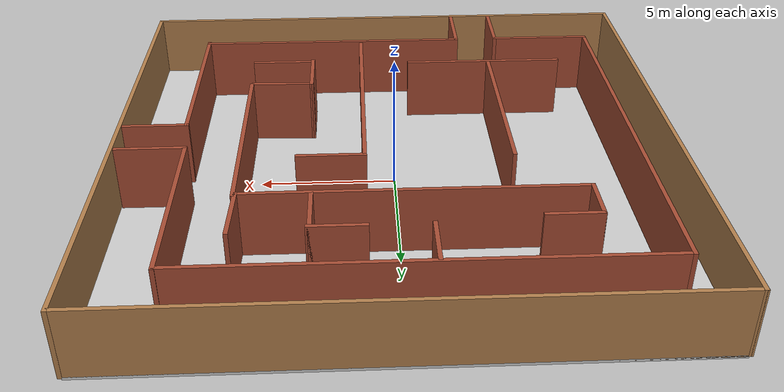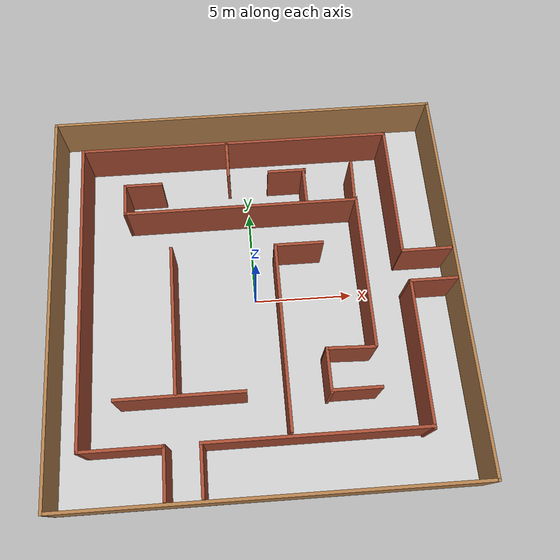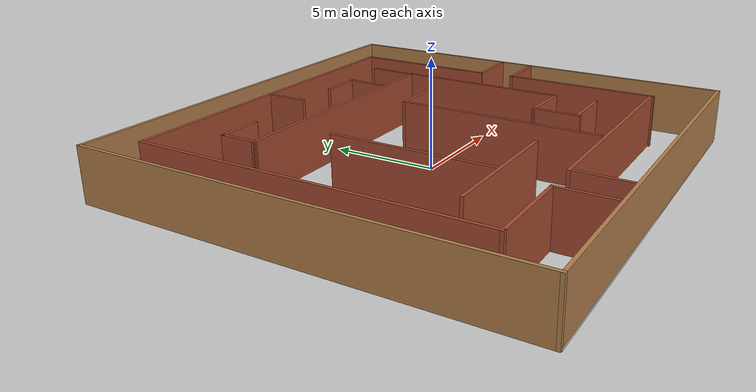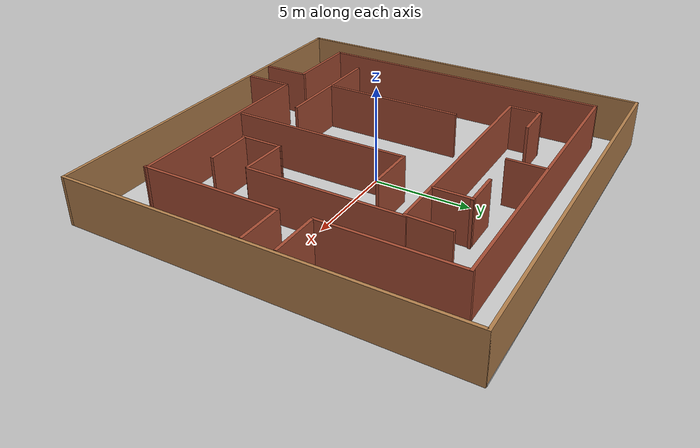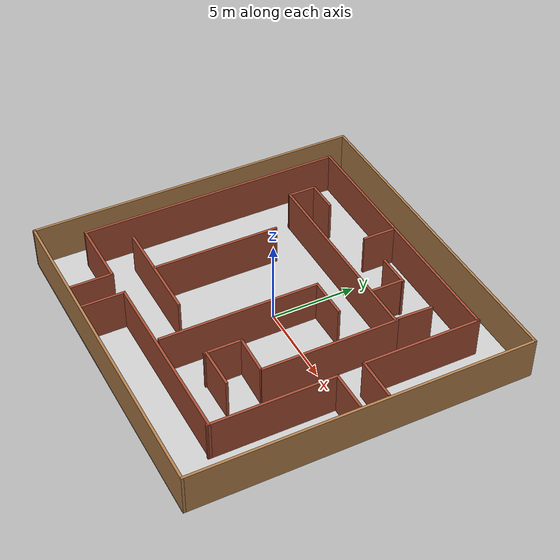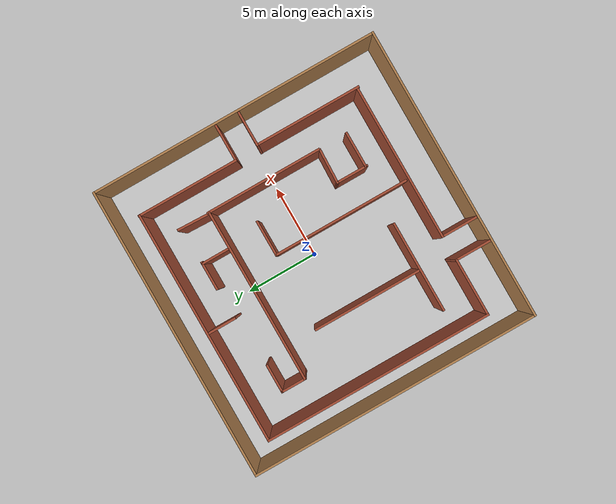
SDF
<sdf version="1.7">
 <world name="default">
  <model name="tb3_maze_world">
   <link name="Wall_0">
    <pose>0 -9.925 0 0 -0 3.14159</pose>
    <visual name="Wall_0_Visual">
     <pose>0 0 1.25 0 -0 0</pose>
     <geometry><box><size>20.25 0.15 2.5</size></box></geometry>
     <material>
      <script><uri>file://media/materials/scripts/gazebo.material</uri><name>Gazebo/Wood</name></script>
      <ambient>1 1 1 1</ambient>
      <shader type="pixel"/>
     </material>
     <meta><layer>0</layer></meta>
    </visual>
    <collision name="Wall_0_Collision">
     <pose>0 0 1.25 0 -0 0</pose>
     <geometry><box><size>20.25 0.15 2.5</size></box></geometry>
     <surface>
      <friction>
       <ode><mu>1</mu><mu2>1</mu2><fdir1>0 0 0</fdir1><slip1>0</slip1><slip2>0</slip2></ode>
       <torsional>
        <coefficient>1</coefficient>
        <patch_radius>0</patch_radius>
        <surface_radius>0</surface_radius>
        <use_patch_radius>1</use_patch_radius>
        <ode><slip>0</slip></ode>
       </torsional>
      </friction>
      <bounce><restitution_coefficient>0</restitution_coefficient><threshold>1e+06</threshold></bounce>
      <contact>
       <collide_without_contact>0</collide_without_contact>
       <collide_without_contact_bitmask>1</collide_without_contact_bitmask>
       <collide_bitmask>1</collide_bitmask>
       <ode>
        <soft_cfm>0</soft_cfm>
        <soft_erp>0.2</soft_erp>
        <kp>1e+13</kp>
        <kd>1</kd>
        <max_vel>0.01</max_vel>
        <min_depth>0</min_depth>
       </ode>
       <bullet>
        <split_impulse>1</split_impulse>
        <split_impulse_penetration_threshold>-0.01</split_impulse_penetration_threshold>
        <soft_cfm>0</soft_cfm>
        <soft_erp>0.2</soft_erp>
        <kp>1e+13</kp>
        <kd>1</kd>
       </bullet>
      </contact>
     </surface>
    </collision>
   </link>
   <link name="Wall_10">
    <pose>-8.57134 0.376075 0 0 -0 1.5708</pose>
    <visual name="Wall_10_Visual">
     <pose>0 0 1.25 0 -0 0</pose>
     <geometry><box><size>15.75 0.15 2.5</size></box></geometry>
     <material>
      <script><uri>file://media/materials/scripts/gazebo.material</uri><name>Gazebo/Bricks</name></script>
      <ambient>1 1 1 1</ambient>
      <shader type="pixel"/>
     </material>
     <meta><layer>0</layer></meta>
    </visual>
    <collision name="Wall_10_Collision">
     <pose>0 0 1.25 0 -0 0</pose>
     <geometry><box><size>15.75 0.15 2.5</size></box></geometry>
     <surface>
      <friction>
       <ode><mu>1</mu><mu2>1</mu2><fdir1>0 0 0</fdir1><slip1>0</slip1><slip2>0</slip2></ode>
       <torsional>
        <coefficient>1</coefficient>
        <patch_radius>0</patch_radius>
        <surface_radius>0</surface_radius>
        <use_patch_radius>1</use_patch_radius>
        <ode><slip>0</slip></ode>
       </torsional>
      </friction>
      <bounce><restitution_coefficient>0</restitution_coefficient><threshold>1e+06</threshold></bounce>
      <contact>
       <collide_without_contact>0</collide_without_contact>
       <collide_without_contact_bitmask>1</collide_without_contact_bitmask>
       <collide_bitmask>1</collide_bitmask>
       <ode>
        <soft_cfm>0</soft_cfm>
        <soft_erp>0.2</soft_erp>
        <kp>1e+13</kp>
        <kd>1</kd>
        <max_vel>0.01</max_vel>
        <min_depth>0</min_depth>
       </ode>
       <bullet>
        <split_impulse>1</split_impulse>
        <split_impulse_penetration_threshold>-0.01</split_impulse_penetration_threshold>
        <soft_cfm>0</soft_cfm>
        <soft_erp>0.2</soft_erp>
        <kp>1e+13</kp>
        <kd>1</kd>
       </bullet>
      </contact>
     </surface>
    </collision>
   </link>
   <link name="Wall_11">
    <pose>-0.579357 8.17574 0 0 0 -4.1e-05</pose>
    <visual name="Wall_11_Visual">
     <pose>0 0 1.25 0 -0 0</pose>
     <geometry><box><size>16.134 0.15 2.5</size></box></geometry>
     <material>
      <script><uri>file://media/materials/scripts/gazebo.material</uri><name>Gazebo/Bricks</name></script>
      <ambient>1 1 1 1</ambient>
      <shader type="pixel"/>
     </material>
     <meta><layer>0</layer></meta>
    </visual>
    <collision name="Wall_11_Collision">
     <pose>0 0 1.25 0 -0 0</pose>
     <geometry><box><size>16.134 0.15 2.5</size></box></geometry>
     <surface>
      <friction>
       <ode><mu>1</mu><mu2>1</mu2><fdir1>0 0 0</fdir1><slip1>0</slip1><slip2>0</slip2></ode>
       <torsional>
        <coefficient>1</coefficient>
        <patch_radius>0</patch_radius>
        <surface_radius>0</surface_radius>
        <use_patch_radius>1</use_patch_radius>
        <ode><slip>0</slip></ode>
       </torsional>
      </friction>
      <bounce><restitution_coefficient>0</restitution_coefficient><threshold>1e+06</threshold></bounce>
      <contact>
       <collide_without_contact>0</collide_without_contact>
       <collide_without_contact_bitmask>1</collide_without_contact_bitmask>
       <collide_bitmask>1</collide_bitmask>
       <ode>
        <soft_cfm>0</soft_cfm>
        <soft_erp>0.2</soft_erp>
        <kp>1e+13</kp>
        <kd>1</kd>
        <max_vel>0.01</max_vel>
        <min_depth>0</min_depth>
       </ode>
       <bullet>
        <split_impulse>1</split_impulse>
        <split_impulse_penetration_threshold>-0.01</split_impulse_penetration_threshold>
        <soft_cfm>0</soft_cfm>
        <soft_erp>0.2</soft_erp>
        <kp>1e+13</kp>
        <kd>1</kd>
       </bullet>
      </contact>
     </surface>
    </collision>
   </link>
   <link name="Wall_12">
    <pose>7.4329 4.77069 0 0 0 -1.5708</pose>
    <visual name="Wall_12_Visual">
     <pose>0 0 1.25 0 -0 0</pose>
     <geometry><box><size>7 0.15 2.5</size></box></geometry>
     <material>
      <script><uri>file://media/materials/scripts/gazebo.material</uri><name>Gazebo/Bricks</name></script>
      <ambient>1 1 1 1</ambient>
      <shader type="pixel"/>
     </material>
     <meta><layer>0</layer></meta>
    </visual>
    <collision name="Wall_12_Collision">
     <pose>0 0 1.25 0 -0 0</pose>
     <geometry><box><size>7 0.15 2.5</size></box></geometry>
     <surface>
      <friction>
       <ode><mu>1</mu><mu2>1</mu2><fdir1>0 0 0</fdir1><slip1>0</slip1><slip2>0</slip2></ode>
       <torsional>
        <coefficient>1</coefficient>
        <patch_radius>0</patch_radius>
        <surface_radius>0</surface_radius>
        <use_patch_radius>1</use_patch_radius>
        <ode><slip>0</slip></ode>
       </torsional>
      </friction>
      <bounce><restitution_coefficient>0</restitution_coefficient><threshold>1e+06</threshold></bounce>
      <contact>
       <collide_without_contact>0</collide_without_contact>
       <collide_without_contact_bitmask>1</collide_without_contact_bitmask>
       <collide_bitmask>1</collide_bitmask>
       <ode>
        <soft_cfm>0</soft_cfm>
        <soft_erp>0.2</soft_erp>
        <kp>1e+13</kp>
        <kd>1</kd>
        <max_vel>0.01</max_vel>
        <min_depth>0</min_depth>
       </ode>
       <bullet>
        <split_impulse>1</split_impulse>
        <split_impulse_penetration_threshold>-0.01</split_impulse_penetration_threshold>
        <soft_cfm>0</soft_cfm>
        <soft_erp>0.2</soft_erp>
        <kp>1e+13</kp>
        <kd>1</kd>
       </bullet>
      </contact>
     </surface>
    </collision>
   </link>
   <link name="Wall_13">
    <pose>8.66564 1.32574 0 0 -0 0.000335</pose>
    <inertial>
     <mass>1</mass>
     <inertia><ixx>1</ixx><ixy>0</ixy><ixz>0</ixz><iyy>1</iyy><iyz>0</iyz><izz>1</izz></inertia>
    </inertial>
    <visual name="Wall_13_Visual">
     <pose>0 0 1.25 0 -0 0</pose>
     <geometry><box><size>2.55604 0.15 2.5</size></box></geometry>
     <material>
      <script><uri>file://media/materials/scripts/gazebo.material</uri><name>Gazebo/Bricks</name></script>
      <ambient>1 1 1 1</ambient>
      <shader type="pixel"><normal_map>__default__</normal_map></shader>
      <diffuse>1 1 1 1</diffuse>
      <specular>0.2 0.2 0.2 1</specular>
      <emissive>0 0 0 1</emissive>
     </material>
     <meta><layer>0</layer></meta>
    </visual>
    <collision name="Wall_13_Collision">
     <pose>0 0 1.25 0 -0 0</pose>
     <geometry><box><size>2.55604 0.15 2.5</size></box></geometry>
     <surface>
      <friction>
       <ode><mu>1</mu><mu2>1</mu2><fdir1>0 0 0</fdir1><slip1>0</slip1><slip2>0</slip2></ode>
       <torsional>
        <coefficient>1</coefficient>
        <patch_radius>0</patch_radius>
        <surface_radius>0</surface_radius>
        <use_patch_radius>1</use_patch_radius>
        <ode><slip>0</slip></ode>
       </torsional>
      </friction>
      <bounce><restitution_coefficient>0</restitution_coefficient><threshold>1e+06</threshold></bounce>
      <contact>
       <collide_without_contact>0</collide_without_contact>
       <collide_without_contact_bitmask>1</collide_without_contact_bitmask>
       <collide_bitmask>1</collide_bitmask>
       <ode>
        <soft_cfm>0</soft_cfm>
        <soft_erp>0.2</soft_erp>
        <kp>1e+13</kp>
        <kd>1</kd>
        <max_vel>0.01</max_vel>
        <min_depth>0</min_depth>
       </ode>
       <bullet>
        <split_impulse>1</split_impulse>
        <split_impulse_penetration_threshold>-0.01</split_impulse_penetration_threshold>
        <soft_cfm>0</soft_cfm>
        <soft_erp>0.2</soft_erp>
        <kp>1e+13</kp>
        <kd>1</kd>
       </bullet>
      </contact>
     </surface>
    </collision>
   </link>
   <link name="Wall_15">
    <pose>8.73819 -0.299308 0 0 -0 3.14159</pose>
    <inertial>
     <mass>1</mass>
     <inertia><ixx>1</ixx><ixy>0</ixy><ixz>0</ixz><iyy>1</iyy><iyz>0</iyz><izz>1</izz></inertia>
    </inertial>
    <visual name="Wall_15_Visual">
     <pose>0 0 1.25 0 -0 0</pose>
     <geometry><box><size>2.43 0.15 2.5</size></box></geometry>
     <material>
      <script><uri>file://media/materials/scripts/gazebo.material</uri><name>Gazebo/Bricks</name></script>
      <ambient>1 1 1 1</ambient>
      <shader type="pixel"><normal_map>__default__</normal_map></shader>
      <diffuse>1 1 1 1</diffuse>
      <specular>0.2 0.2 0.2 1</specular>
      <emissive>0 0 0 1</emissive>
     </material>
     <meta><layer>0</layer></meta>
    </visual>
    <collision name="Wall_15_Collision">
     <pose>0 0 1.25 0 -0 0</pose>
     <geometry><box><size>2.43 0.15 2.5</size></box></geometry>
     <surface>
      <friction>
       <ode><mu>1</mu><mu2>1</mu2><fdir1>0 0 0</fdir1><slip1>0</slip1><slip2>0</slip2></ode>
       <torsional>
        <coefficient>1</coefficient>
        <patch_radius>0</patch_radius>
        <surface_radius>0</surface_radius>
        <use_patch_radius>1</use_patch_radius>
        <ode><slip>0</slip></ode>
       </torsional>
      </friction>
      <bounce><restitution_coefficient>0</restitution_coefficient><threshold>1e+06</threshold></bounce>
      <contact>
       <collide_without_contact>0</collide_without_contact>
       <collide_without_contact_bitmask>1</collide_without_contact_bitmask>
       <collide_bitmask>1</collide_bitmask>
       <ode>
        <soft_cfm>0</soft_cfm>
        <soft_erp>0.2</soft_erp>
        <kp>1e+13</kp>
        <kd>1</kd>
        <max_vel>0.01</max_vel>
        <min_depth>0</min_depth>
       </ode>
       <bullet>
        <split_impulse>1</split_impulse>
        <split_impulse_penetration_threshold>-0.01</split_impulse_penetration_threshold>
        <soft_cfm>0</soft_cfm>
        <soft_erp>0.2</soft_erp>
        <kp>1e+13</kp>
        <kd>1</kd>
       </bullet>
      </contact>
     </surface>
    </collision>
   </link>
   <link name="Wall_16">
    <pose>7.60819 -3.88746 0 0 0 -1.5708</pose>
    <visual name="Wall_16_Visual">
     <pose>0 0 1.25 0 -0 0</pose>
     <geometry><box><size>7.3263 0.15 2.5</size></box></geometry>
     <material>
      <script><uri>file://media/materials/scripts/gazebo.material</uri><name>Gazebo/Bricks</name></script>
      <ambient>1 1 1 1</ambient>
      <shader type="pixel"/>
     </material>
     <meta><layer>0</layer></meta>
    </visual>
    <collision name="Wall_16_Collision">
     <pose>0 0 1.25 0 -0 0</pose>
     <geometry><box><size>7.3263 0.15 2.5</size></box></geometry>
     <surface>
      <friction>
       <ode><mu>1</mu><mu2>1</mu2><fdir1>0 0 0</fdir1><slip1>0</slip1><slip2>0</slip2></ode>
       <torsional>
        <coefficient>1</coefficient>
        <patch_radius>0</patch_radius>
        <surface_radius>0</surface_radius>
        <use_patch_radius>1</use_patch_radius>
        <ode><slip>0</slip></ode>
       </torsional>
      </friction>
      <bounce><restitution_coefficient>0</restitution_coefficient><threshold>1e+06</threshold></bounce>
      <contact>
       <collide_without_contact>0</collide_without_contact>
       <collide_without_contact_bitmask>1</collide_without_contact_bitmask>
       <collide_bitmask>1</collide_bitmask>
       <ode>
        <soft_cfm>0</soft_cfm>
        <soft_erp>0.2</soft_erp>
        <kp>1e+13</kp>
        <kd>1</kd>
        <max_vel>0.01</max_vel>
        <min_depth>0</min_depth>
       </ode>
       <bullet>
        <split_impulse>1</split_impulse>
        <split_impulse_penetration_threshold>-0.01</split_impulse_penetration_threshold>
        <soft_cfm>0</soft_cfm>
        <soft_erp>0.2</soft_erp>
        <kp>1e+13</kp>
        <kd>1</kd>
       </bullet>
      </contact>
     </surface>
    </collision>
   </link>
   <link name="Wall_17">
    <pose>2.30819 -7.39403 0 0 -0 3.14159</pose>
    <visual name="Wall_17_Visual">
     <pose>0 0 1.25 0 -0 0</pose>
     <geometry><box><size>10.75 0.15 2.5</size></box></geometry>
     <material>
      <script><uri>file://media/materials/scripts/gazebo.material</uri><name>Gazebo/Bricks</name></script>
      <ambient>1 1 1 1</ambient>
      <shader type="pixel"/>
     </material>
     <meta><layer>0</layer></meta>
    </visual>
    <collision name="Wall_17_Collision">
     <pose>0 0 1.25 0 -0 0</pose>
     <geometry><box><size>10.75 0.15 2.5</size></box></geometry>
     <surface>
      <friction>
       <ode><mu>1</mu><mu2>1</mu2><fdir1>0 0 0</fdir1><slip1>0</slip1><slip2>0</slip2></ode>
       <torsional>
        <coefficient>1</coefficient>
        <patch_radius>0</patch_radius>
        <surface_radius>0</surface_radius>
        <use_patch_radius>1</use_patch_radius>
        <ode><slip>0</slip></ode>
       </torsional>
      </friction>
      <bounce><restitution_coefficient>0</restitution_coefficient><threshold>1e+06</threshold></bounce>
      <contact>
       <collide_without_contact>0</collide_without_contact>
       <collide_without_contact_bitmask>1</collide_without_contact_bitmask>
       <collide_bitmask>1</collide_bitmask>
       <ode>
        <soft_cfm>0</soft_cfm>
        <soft_erp>0.2</soft_erp>
        <kp>1e+13</kp>
        <kd>1</kd>
        <max_vel>0.01</max_vel>
        <min_depth>0</min_depth>
       </ode>
       <bullet>
        <split_impulse>1</split_impulse>
        <split_impulse_penetration_threshold>-0.01</split_impulse_penetration_threshold>
        <soft_cfm>0</soft_cfm>
        <soft_erp>0.2</soft_erp>
        <kp>1e+13</kp>
        <kd>1</kd>
       </bullet>
      </contact>
     </surface>
    </collision>
   </link>
   <link name="Wall_18">
    <pose>-2.99181 -8.59 0 0 0 -1.5708</pose>
    <inertial>
     <mass>1</mass>
     <inertia><ixx>1</ixx><ixy>0</ixy><ixz>0</ixz><iyy>1</iyy><iyz>0</iyz><izz>1</izz></inertia>
    </inertial>
    <visual name="Wall_18_Visual">
     <pose>0 0 1.25 0 -0 0</pose>
     <geometry><box><size>2.5 0.15 2.5</size></box></geometry>
     <material>
      <script><uri>file://media/materials/scripts/gazebo.material</uri><name>Gazebo/Bricks</name></script>
      <ambient>1 1 1 1</ambient>
      <shader type="pixel"><normal_map>__default__</normal_map></shader>
      <diffuse>1 1 1 1</diffuse>
      <specular>0.2 0.2 0.2 1</specular>
      <emissive>0 0 0 1</emissive>
     </material>
     <meta><layer>0</layer></meta>
    </visual>
    <collision name="Wall_18_Collision">
     <pose>0 0 1.25 0 -0 0</pose>
     <geometry><box><size>2.5 0.15 2.5</size></box></geometry>
     <surface>
      <friction>
       <ode><mu>1</mu><mu2>1</mu2><fdir1>0 0 0</fdir1><slip1>0</slip1><slip2>0</slip2></ode>
       <torsional>
        <coefficient>1</coefficient>
        <patch_radius>0</patch_radius>
        <surface_radius>0</surface_radius>
        <use_patch_radius>1</use_patch_radius>
        <ode><slip>0</slip></ode>
       </torsional>
      </friction>
      <bounce><restitution_coefficient>0</restitution_coefficient><threshold>1e+06</threshold></bounce>
      <contact>
       <collide_without_contact>0</collide_without_contact>
       <collide_without_contact_bitmask>1</collide_without_contact_bitmask>
       <collide_bitmask>1</collide_bitmask>
       <ode>
        <soft_cfm>0</soft_cfm>
        <soft_erp>0.2</soft_erp>
        <kp>1e+13</kp>
        <kd>1</kd>
        <max_vel>0.01</max_vel>
        <min_depth>0</min_depth>
       </ode>
       <bullet>
        <split_impulse>1</split_impulse>
        <split_impulse_penetration_threshold>-0.01</split_impulse_penetration_threshold>
        <soft_cfm>0</soft_cfm>
        <soft_erp>0.2</soft_erp>
        <kp>1e+13</kp>
        <kd>1</kd>
       </bullet>
      </contact>
     </surface>
    </collision>
   </link>
   <link name="Wall_2">
    <pose>-10.05 0 0 0 -0 1.5708</pose>
    <visual name="Wall_2_Visual">
     <pose>0 0 1.25 0 -0 0</pose>
     <geometry><box><size>20 0.15 2.5</size></box></geometry>
     <material>
      <script><uri>file://media/materials/scripts/gazebo.material</uri><name>Gazebo/Wood</name></script>
      <ambient>1 1 1 1</ambient>
      <shader type="pixel"/>
     </material>
     <meta><layer>0</layer></meta>
    </visual>
    <collision name="Wall_2_Collision">
     <pose>0 0 1.25 0 -0 0</pose>
     <geometry><box><size>20 0.15 2.5</size></box></geometry>
     <surface>
      <friction>
       <ode><mu>1</mu><mu2>1</mu2><fdir1>0 0 0</fdir1><slip1>0</slip1><slip2>0</slip2></ode>
       <torsional>
        <coefficient>1</coefficient>
        <patch_radius>0</patch_radius>
        <surface_radius>0</surface_radius>
        <use_patch_radius>1</use_patch_radius>
        <ode><slip>0</slip></ode>
       </torsional>
      </friction>
      <bounce><restitution_coefficient>0</restitution_coefficient><threshold>1e+06</threshold></bounce>
      <contact>
       <collide_without_contact>0</collide_without_contact>
       <collide_without_contact_bitmask>1</collide_without_contact_bitmask>
       <collide_bitmask>1</collide_bitmask>
       <ode>
        <soft_cfm>0</soft_cfm>
        <soft_erp>0.2</soft_erp>
        <kp>1e+13</kp>
        <kd>1</kd>
        <max_vel>0.01</max_vel>
        <min_depth>0</min_depth>
       </ode>
       <bullet>
        <split_impulse>1</split_impulse>
        <split_impulse_penetration_threshold>-0.01</split_impulse_penetration_threshold>
        <soft_cfm>0</soft_cfm>
        <soft_erp>0.2</soft_erp>
        <kp>1e+13</kp>
        <kd>1</kd>
       </bullet>
      </contact>
     </surface>
    </collision>
   </link>
   <link name="Wall_20">
    <pose>-3.89345 -5.19374 0 0 -0 0</pose>
    <visual name="Wall_20_Visual">
     <pose>0 0 1.25 0 -0 0</pose>
     <geometry><box><size>6.25 0.15 2.5</size></box></geometry>
     <material>
      <script><uri>file://media/materials/scripts/gazebo.material</uri><name>Gazebo/Bricks</name></script>
      <ambient>1 1 1 1</ambient>
      <shader type="pixel"/>
     </material>
     <meta><layer>0</layer></meta>
    </visual>
    <collision name="Wall_20_Collision">
     <pose>0 0 1.25 0 -0 0</pose>
     <geometry><box><size>6.25 0.15 2.5</size></box></geometry>
     <surface>
      <friction>
       <ode><mu>1</mu><mu2>1</mu2><fdir1>0 0 0</fdir1><slip1>0</slip1><slip2>0</slip2></ode>
       <torsional>
        <coefficient>1</coefficient>
        <patch_radius>0</patch_radius>
        <surface_radius>0</surface_radius>
        <use_patch_radius>1</use_patch_radius>
        <ode><slip>0</slip></ode>
       </torsional>
      </friction>
      <bounce><restitution_coefficient>0</restitution_coefficient><threshold>1e+06</threshold></bounce>
      <contact>
       <collide_without_contact>0</collide_without_contact>
       <collide_without_contact_bitmask>1</collide_without_contact_bitmask>
       <collide_bitmask>1</collide_bitmask>
       <ode>
        <soft_cfm>0</soft_cfm>
        <soft_erp>0.2</soft_erp>
        <kp>1e+13</kp>
        <kd>1</kd>
        <max_vel>0.01</max_vel>
        <min_depth>0</min_depth>
       </ode>
       <bullet>
        <split_impulse>1</split_impulse>
        <split_impulse_penetration_threshold>-0.01</split_impulse_penetration_threshold>
        <soft_cfm>0</soft_cfm>
        <soft_erp>0.2</soft_erp>
        <kp>1e+13</kp>
        <kd>1</kd>
       </bullet>
      </contact>
     </surface>
    </collision>
   </link>
   <link name="Wall_23">
    <pose>-4.08836 -1.43717 0 0 -0 1.5708</pose>
    <visual name="Wall_23_Visual">
     <pose>0 0 1.25 0 -0 0</pose>
     <geometry><box><size>7.5 0.15 2.5</size></box></geometry>
     <material>
      <script><uri>file://media/materials/scripts/gazebo.material</uri><name>Gazebo/Bricks</name></script>
      <ambient>1 1 1 1</ambient>
      <shader type="pixel"/>
     </material>
     <meta><layer>0</layer></meta>
    </visual>
    <collision name="Wall_23_Collision">
     <pose>0 0 1.25 0 -0 0</pose>
     <geometry><box><size>7.5 0.15 2.5</size></box></geometry>
     <surface>
      <friction>
       <ode><mu>1</mu><mu2>1</mu2><fdir1>0 0 0</fdir1><slip1>0</slip1><slip2>0</slip2></ode>
       <torsional>
        <coefficient>1</coefficient>
        <patch_radius>0</patch_radius>
        <surface_radius>0</surface_radius>
        <use_patch_radius>1</use_patch_radius>
        <ode><slip>0</slip></ode>
       </torsional>
      </friction>
      <bounce><restitution_coefficient>0</restitution_coefficient><threshold>1e+06</threshold></bounce>
      <contact>
       <collide_without_contact>0</collide_without_contact>
       <collide_without_contact_bitmask>1</collide_without_contact_bitmask>
       <collide_bitmask>1</collide_bitmask>
       <ode>
        <soft_cfm>0</soft_cfm>
        <soft_erp>0.2</soft_erp>
        <kp>1e+13</kp>
        <kd>1</kd>
        <max_vel>0.01</max_vel>
        <min_depth>0</min_depth>
       </ode>
       <bullet>
        <split_impulse>1</split_impulse>
        <split_impulse_penetration_threshold>-0.01</split_impulse_penetration_threshold>
        <soft_cfm>0</soft_cfm>
        <soft_erp>0.2</soft_erp>
        <kp>1e+13</kp>
        <kd>1</kd>
       </bullet>
      </contact>
     </surface>
    </collision>
   </link>
   <link name="Wall_25">
    <pose>1.13237 -2.58107 0 0 0 -1.5708</pose>
    <visual name="Wall_25_Visual">
     <pose>0 0 1.25 0 -0 0</pose>
     <geometry><box><size>9.28167 0.15 2.5</size></box></geometry>
     <material>
      <script><uri>file://media/materials/scripts/gazebo.material</uri><name>Gazebo/Bricks</name></script>
      <ambient>1 1 1 1</ambient>
      <shader type="pixel"/>
     </material>
     <meta><layer>0</layer></meta>
    </visual>
    <collision name="Wall_25_Collision">
     <pose>0 0 1.25 0 -0 0</pose>
     <geometry><box><size>9.28167 0.15 2.5</size></box></geometry>
     <surface>
      <friction>
       <ode><mu>1</mu><mu2>1</mu2><fdir1>0 0 0</fdir1><slip1>0</slip1><slip2>0</slip2></ode>
       <torsional>
        <coefficient>1</coefficient>
        <patch_radius>0</patch_radius>
        <surface_radius>0</surface_radius>
        <use_patch_radius>1</use_patch_radius>
        <ode><slip>0</slip></ode>
       </torsional>
      </friction>
      <bounce><restitution_coefficient>0</restitution_coefficient><threshold>1e+06</threshold></bounce>
      <contact>
       <collide_without_contact>0</collide_without_contact>
       <collide_without_contact_bitmask>1</collide_without_contact_bitmask>
       <collide_bitmask>1</collide_bitmask>
       <ode>
        <soft_cfm>0</soft_cfm>
        <soft_erp>0.2</soft_erp>
        <kp>1e+13</kp>
        <kd>1</kd>
        <max_vel>0.01</max_vel>
        <min_depth>0</min_depth>
       </ode>
       <bullet>
        <split_impulse>1</split_impulse>
        <split_impulse_penetration_threshold>-0.01</split_impulse_penetration_threshold>
        <soft_cfm>0</soft_cfm>
        <soft_erp>0.2</soft_erp>
        <kp>1e+13</kp>
        <kd>1</kd>
       </bullet>
      </contact>
     </surface>
    </collision>
   </link>
   <link name="Wall_27">
    <pose>2.30737 2.06634 0 0 -0 0</pose>
    <visual name="Wall_27_Visual">
     <pose>0 0 1.25 0 -0 0</pose>
     <geometry><box><size>2.5 0.15 2.5</size></box></geometry>
     <material>
      <script><uri>file://media/materials/scripts/gazebo.material</uri><name>Gazebo/Bricks</name></script>
      <ambient>1 1 1 1</ambient>
      <shader type="pixel"/>
     </material>
     <meta><layer>0</layer></meta>
    </visual>
    <collision name="Wall_27_Collision">
     <pose>0 0 1.25 0 -0 0</pose>
     <geometry><box><size>2.5 0.15 2.5</size></box></geometry>
     <surface>
      <friction>
       <ode><mu>1</mu><mu2>1</mu2><fdir1>0 0 0</fdir1><slip1>0</slip1><slip2>0</slip2></ode>
       <torsional>
        <coefficient>1</coefficient>
        <patch_radius>0</patch_radius>
        <surface_radius>0</surface_radius>
        <use_patch_radius>1</use_patch_radius>
        <ode><slip>0</slip></ode>
       </torsional>
      </friction>
      <bounce><restitution_coefficient>0</restitution_coefficient><threshold>1e+06</threshold></bounce>
      <contact>
       <collide_without_contact>0</collide_without_contact>
       <collide_without_contact_bitmask>1</collide_without_contact_bitmask>
       <collide_bitmask>1</collide_bitmask>
       <ode>
        <soft_cfm>0</soft_cfm>
        <soft_erp>0.2</soft_erp>
        <kp>1e+13</kp>
        <kd>1</kd>
        <max_vel>0.01</max_vel>
        <min_depth>0</min_depth>
       </ode>
       <bullet>
        <split_impulse>1</split_impulse>
        <split_impulse_penetration_threshold>-0.01</split_impulse_penetration_threshold>
        <soft_cfm>0</soft_cfm>
        <soft_erp>0.2</soft_erp>
        <kp>1e+13</kp>
        <kd>1</kd>
       </bullet>
      </contact>
     </surface>
    </collision>
   </link>
   <link name="Wall_29">
    <pose>-0.482899 4.35573 0 0 -0 0.000903</pose>
    <visual name="Wall_29_Visual">
     <pose>0 0 1.25 0 -0 0</pose>
     <geometry><box><size>11.9291 0.15 2.5</size></box></geometry>
     <material>
      <script><uri>file://media/materials/scripts/gazebo.material</uri><name>Gazebo/Bricks</name></script>
      <ambient>1 1 1 1</ambient>
      <shader type="pixel"/>
     </material>
     <meta><layer>0</layer></meta>
    </visual>
    <collision name="Wall_29_Collision">
     <pose>0 0 1.25 0 -0 0</pose>
     <geometry><box><size>11.9291 0.15 2.5</size></box></geometry>
     <surface>
      <friction>
       <ode><mu>1</mu><mu2>1</mu2><fdir1>0 0 0</fdir1><slip1>0</slip1><slip2>0</slip2></ode>
       <torsional>
        <coefficient>1</coefficient>
        <patch_radius>0</patch_radius>
        <surface_radius>0</surface_radius>
        <use_patch_radius>1</use_patch_radius>
        <ode><slip>0</slip></ode>
       </torsional>
      </friction>
      <bounce><restitution_coefficient>0</restitution_coefficient><threshold>1e+06</threshold></bounce>
      <contact>
       <collide_without_contact>0</collide_without_contact>
       <collide_without_contact_bitmask>1</collide_without_contact_bitmask>
       <collide_bitmask>1</collide_bitmask>
       <ode>
        <soft_cfm>0</soft_cfm>
        <soft_erp>0.2</soft_erp>
        <kp>1e+13</kp>
        <kd>1</kd>
        <max_vel>0.01</max_vel>
        <min_depth>0</min_depth>
       </ode>
       <bullet>
        <split_impulse>1</split_impulse>
        <split_impulse_penetration_threshold>-0.01</split_impulse_penetration_threshold>
        <soft_cfm>0</soft_cfm>
        <soft_erp>0.2</soft_erp>
        <kp>1e+13</kp>
        <kd>1</kd>
       </bullet>
      </contact>
     </surface>
    </collision>
   </link>
   <link name="Wall_30">
    <pose>5.47757 0.501702 0 0 0 -1.5708</pose>
    <visual name="Wall_30_Visual">
     <pose>0 0 1.25 0 -0 0</pose>
     <geometry><box><size>8.01056 0.15 2.5</size></box></geometry>
     <material>
      <script><uri>file://media/materials/scripts/gazebo.material</uri><name>Gazebo/Bricks</name></script>
      <ambient>1 1 1 1</ambient>
      <shader type="pixel"/>
     </material>
     <meta><layer>0</layer></meta>
    </visual>
    <collision name="Wall_30_Collision">
     <pose>0 0 1.25 0 -0 0</pose>
     <geometry><box><size>8.01056 0.15 2.5</size></box></geometry>
     <surface>
      <friction>
       <ode><mu>1</mu><mu2>1</mu2><fdir1>0 0 0</fdir1><slip1>0</slip1><slip2>0</slip2></ode>
       <torsional>
        <coefficient>1</coefficient>
        <patch_radius>0</patch_radius>
        <surface_radius>0</surface_radius>
        <use_patch_radius>1</use_patch_radius>
        <ode><slip>0</slip></ode>
       </torsional>
      </friction>
      <bounce><restitution_coefficient>0</restitution_coefficient><threshold>1e+06</threshold></bounce>
      <contact>
       <collide_without_contact>0</collide_without_contact>
       <collide_without_contact_bitmask>1</collide_without_contact_bitmask>
       <collide_bitmask>1</collide_bitmask>
       <ode>
        <soft_cfm>0</soft_cfm>
        <soft_erp>0.2</soft_erp>
        <kp>1e+13</kp>
        <kd>1</kd>
        <max_vel>0.01</max_vel>
        <min_depth>0</min_depth>
       </ode>
       <bullet>
        <split_impulse>1</split_impulse>
        <split_impulse_penetration_threshold>-0.01</split_impulse_penetration_threshold>
        <soft_cfm>0</soft_cfm>
        <soft_erp>0.2</soft_erp>
        <kp>1e+13</kp>
        <kd>1</kd>
       </bullet>
      </contact>
     </surface>
    </collision>
   </link>
   <link name="Wall_31">
    <pose>4.2671 -3.46404 0 0 -0 3.11048</pose>
    <visual name="Wall_31_Visual">
     <pose>0 0 1.25 0 -0 0</pose>
     <geometry><box><size>2.43017 0.15 2.5</size></box></geometry>
     <material>
      <script><uri>file://media/materials/scripts/gazebo.material</uri><name>Gazebo/Bricks</name></script>
      <ambient>1 1 1 1</ambient>
      <shader type="pixel"/>
     </material>
     <meta><layer>0</layer></meta>
    </visual>
    <collision name="Wall_31_Collision">
     <pose>0 0 1.25 0 -0 0</pose>
     <geometry><box><size>2.43017 0.15 2.5</size></box></geometry>
     <surface>
      <friction>
       <ode><mu>1</mu><mu2>1</mu2><fdir1>0 0 0</fdir1><slip1>0</slip1><slip2>0</slip2></ode>
       <torsional>
        <coefficient>1</coefficient>
        <patch_radius>0</patch_radius>
        <surface_radius>0</surface_radius>
        <use_patch_radius>1</use_patch_radius>
        <ode><slip>0</slip></ode>
       </torsional>
      </friction>
      <bounce><restitution_coefficient>0</restitution_coefficient><threshold>1e+06</threshold></bounce>
      <contact>
       <collide_without_contact>0</collide_without_contact>
       <collide_without_contact_bitmask>1</collide_without_contact_bitmask>
       <collide_bitmask>1</collide_bitmask>
       <ode>
        <soft_cfm>0</soft_cfm>
        <soft_erp>0.2</soft_erp>
        <kp>1e+13</kp>
        <kd>1</kd>
        <max_vel>0.01</max_vel>
        <min_depth>0</min_depth>
       </ode>
       <bullet>
        <split_impulse>1</split_impulse>
        <split_impulse_penetration_threshold>-0.01</split_impulse_penetration_threshold>
        <soft_cfm>0</soft_cfm>
        <soft_erp>0.2</soft_erp>
        <kp>1e+13</kp>
        <kd>1</kd>
       </bullet>
      </contact>
     </surface>
    </collision>
   </link>
   <link name="Wall_32">
    <pose>3.12757 -4.4733 0 0 0 -1.5708</pose>
    <visual name="Wall_32_Visual">
     <pose>0 0 1.25 0 -0 0</pose>
     <geometry><box><size>2.23944 0.15 2.5</size></box></geometry>
     <material>
      <script><uri>file://media/materials/scripts/gazebo.material</uri><name>Gazebo/Bricks</name></script>
      <ambient>1 1 1 1</ambient>
      <shader type="pixel"/>
     </material>
     <meta><layer>0</layer></meta>
    </visual>
    <collision name="Wall_32_Collision">
     <pose>0 0 1.25 0 -0 0</pose>
     <geometry><box><size>2.23944 0.15 2.5</size></box></geometry>
     <surface>
      <friction>
       <ode><mu>1</mu><mu2>1</mu2><fdir1>0 0 0</fdir1><slip1>0</slip1><slip2>0</slip2></ode>
       <torsional>
        <coefficient>1</coefficient>
        <patch_radius>0</patch_radius>
        <surface_radius>0</surface_radius>
        <use_patch_radius>1</use_patch_radius>
        <ode><slip>0</slip></ode>
       </torsional>
      </friction>
      <bounce><restitution_coefficient>0</restitution_coefficient><threshold>1e+06</threshold></bounce>
      <contact>
       <collide_without_contact>0</collide_without_contact>
       <collide_without_contact_bitmask>1</collide_without_contact_bitmask>
       <collide_bitmask>1</collide_bitmask>
       <ode>
        <soft_cfm>0</soft_cfm>
        <soft_erp>0.2</soft_erp>
        <kp>1e+13</kp>
        <kd>1</kd>
        <max_vel>0.01</max_vel>
        <min_depth>0</min_depth>
       </ode>
       <bullet>
        <split_impulse>1</split_impulse>
        <split_impulse_penetration_threshold>-0.01</split_impulse_penetration_threshold>
        <soft_cfm>0</soft_cfm>
        <soft_erp>0.2</soft_erp>
        <kp>1e+13</kp>
        <kd>1</kd>
       </bullet>
      </contact>
     </surface>
    </collision>
   </link>
   <link name="Wall_33">
    <pose>4.30257 -5.43645 0 0 -0 0</pose>
    <visual name="Wall_33_Visual">
     <pose>0 0 1.25 0 -0 0</pose>
     <geometry><box><size>2.5 0.15 2.5</size></box></geometry>
     <material>
      <script><uri>file://media/materials/scripts/gazebo.material</uri><name>Gazebo/Bricks</name></script>
      <ambient>1 1 1 1</ambient>
      <shader type="pixel"/>
     </material>
     <meta><layer>0</layer></meta>
    </visual>
    <collision name="Wall_33_Collision">
     <pose>0 0 1.25 0 -0 0</pose>
     <geometry><box><size>2.5 0.15 2.5</size></box></geometry>
     <surface>
      <friction>
       <ode><mu>1</mu><mu2>1</mu2><fdir1>0 0 0</fdir1><slip1>0</slip1><slip2>0</slip2></ode>
       <torsional>
        <coefficient>1</coefficient>
        <patch_radius>0</patch_radius>
        <surface_radius>0</surface_radius>
        <use_patch_radius>1</use_patch_radius>
        <ode><slip>0</slip></ode>
       </torsional>
      </friction>
      <bounce><restitution_coefficient>0</restitution_coefficient><threshold>1e+06</threshold></bounce>
      <contact>
       <collide_without_contact>0</collide_without_contact>
       <collide_without_contact_bitmask>1</collide_without_contact_bitmask>
       <collide_bitmask>1</collide_bitmask>
       <ode>
        <soft_cfm>0</soft_cfm>
        <soft_erp>0.2</soft_erp>
        <kp>1e+13</kp>
        <kd>1</kd>
        <max_vel>0.01</max_vel>
        <min_depth>0</min_depth>
       </ode>
       <bullet>
        <split_impulse>1</split_impulse>
        <split_impulse_penetration_threshold>-0.01</split_impulse_penetration_threshold>
        <soft_cfm>0</soft_cfm>
        <soft_erp>0.2</soft_erp>
        <kp>1e+13</kp>
        <kd>1</kd>
       </bullet>
      </contact>
     </surface>
    </collision>
   </link>
   <link name="Wall_36">
    <pose>-6.37243 5.15041 0 0 -0 1.5708</pose>
    <visual name="Wall_36_Visual">
     <pose>0 0 1.25 0 -0 0</pose>
     <geometry><box><size>1.75 0.15 2.5</size></box></geometry>
     <material>
      <script><uri>file://media/materials/scripts/gazebo.material</uri><name>Gazebo/Bricks</name></script>
      <ambient>1 1 1 1</ambient>
      <shader type="pixel"/>
     </material>
     <meta><layer>0</layer></meta>
    </visual>
    <collision name="Wall_36_Collision">
     <pose>0 0 1.25 0 -0 0</pose>
     <geometry><box><size>1.75 0.15 2.5</size></box></geometry>
     <surface>
      <friction>
       <ode><mu>1</mu><mu2>1</mu2><fdir1>0 0 0</fdir1><slip1>0</slip1><slip2>0</slip2></ode>
       <torsional>
        <coefficient>1</coefficient>
        <patch_radius>0</patch_radius>
        <surface_radius>0</surface_radius>
        <use_patch_radius>1</use_patch_radius>
        <ode><slip>0</slip></ode>
       </torsional>
      </friction>
      <bounce><restitution_coefficient>0</restitution_coefficient><threshold>1e+06</threshold></bounce>
      <contact>
       <collide_without_contact>0</collide_without_contact>
       <collide_without_contact_bitmask>1</collide_without_contact_bitmask>
       <collide_bitmask>1</collide_bitmask>
       <ode>
        <soft_cfm>0</soft_cfm>
        <soft_erp>0.2</soft_erp>
        <kp>1e+13</kp>
        <kd>1</kd>
        <max_vel>0.01</max_vel>
        <min_depth>0</min_depth>
       </ode>
       <bullet>
        <split_impulse>1</split_impulse>
        <split_impulse_penetration_threshold>-0.01</split_impulse_penetration_threshold>
        <soft_cfm>0</soft_cfm>
        <soft_erp>0.2</soft_erp>
        <kp>1e+13</kp>
        <kd>1</kd>
       </bullet>
      </contact>
     </surface>
    </collision>
   </link>
   <link name="Wall_37">
    <pose>-5.44743 5.95041 0 0 -0 0</pose>
    <visual name="Wall_37_Visual">
     <pose>0 0 1.25 0 -0 0</pose>
     <geometry><box><size>2 0.15 2.5</size></box></geometry>
     <material>
      <script><uri>file://media/materials/scripts/gazebo.material</uri><name>Gazebo/Bricks</name></script>
      <ambient>1 1 1 1</ambient>
      <shader type="pixel"/>
     </material>
     <meta><layer>0</layer></meta>
    </visual>
    <collision name="Wall_37_Collision">
     <pose>0 0 1.25 0 -0 0</pose>
     <geometry><box><size>2 0.15 2.5</size></box></geometry>
     <surface>
      <friction>
       <ode><mu>1</mu><mu2>1</mu2><fdir1>0 0 0</fdir1><slip1>0</slip1><slip2>0</slip2></ode>
       <torsional>
        <coefficient>1</coefficient>
        <patch_radius>0</patch_radius>
        <surface_radius>0</surface_radius>
        <use_patch_radius>1</use_patch_radius>
        <ode><slip>0</slip></ode>
       </torsional>
      </friction>
      <bounce><restitution_coefficient>0</restitution_coefficient><threshold>1e+06</threshold></bounce>
      <contact>
       <collide_without_contact>0</collide_without_contact>
       <collide_without_contact_bitmask>1</collide_without_contact_bitmask>
       <collide_bitmask>1</collide_bitmask>
       <ode>
        <soft_cfm>0</soft_cfm>
        <soft_erp>0.2</soft_erp>
        <kp>1e+13</kp>
        <kd>1</kd>
        <max_vel>0.01</max_vel>
        <min_depth>0</min_depth>
       </ode>
       <bullet>
        <split_impulse>1</split_impulse>
        <split_impulse_penetration_threshold>-0.01</split_impulse_penetration_threshold>
        <soft_cfm>0</soft_cfm>
        <soft_erp>0.2</soft_erp>
        <kp>1e+13</kp>
        <kd>1</kd>
       </bullet>
      </contact>
     </surface>
    </collision>
   </link>
   <link name="Wall_39">
    <pose>-0.988552 7.17781 0 0 0 -1.5708</pose>
    <visual name="Wall_39_Visual">
     <pose>0 0 1.25 0 -0 0</pose>
     <geometry><box><size>2 0.15 2.5</size></box></geometry>
     <material>
      <script><uri>file://media/materials/scripts/gazebo.material</uri><name>Gazebo/Bricks</name></script>
      <ambient>1 1 1 1</ambient>
      <shader type="pixel"/>
     </material>
     <meta><layer>0</layer></meta>
    </visual>
    <collision name="Wall_39_Collision">
     <pose>0 0 1.25 0 -0 0</pose>
     <geometry><box><size>2 0.15 2.5</size></box></geometry>
     <surface>
      <friction>
       <ode><mu>1</mu><mu2>1</mu2><fdir1>0 0 0</fdir1><slip1>0</slip1><slip2>0</slip2></ode>
       <torsional>
        <coefficient>1</coefficient>
        <patch_radius>0</patch_radius>
        <surface_radius>0</surface_radius>
        <use_patch_radius>1</use_patch_radius>
        <ode><slip>0</slip></ode>
       </torsional>
      </friction>
      <bounce><restitution_coefficient>0</restitution_coefficient><threshold>1e+06</threshold></bounce>
      <contact>
       <collide_without_contact>0</collide_without_contact>
       <collide_without_contact_bitmask>1</collide_without_contact_bitmask>
       <collide_bitmask>1</collide_bitmask>
       <ode>
        <soft_cfm>0</soft_cfm>
        <soft_erp>0.2</soft_erp>
        <kp>1e+13</kp>
        <kd>1</kd>
        <max_vel>0.01</max_vel>
        <min_depth>0</min_depth>
       </ode>
       <bullet>
        <split_impulse>1</split_impulse>
        <split_impulse_penetration_threshold>-0.01</split_impulse_penetration_threshold>
        <soft_cfm>0</soft_cfm>
        <soft_erp>0.2</soft_erp>
        <kp>1e+13</kp>
        <kd>1</kd>
       </bullet>
      </contact>
     </surface>
    </collision>
   </link>
   <link name="Wall_4">
    <pose>0 9.925 0 0 -0 0</pose>
    <visual name="Wall_4_Visual">
     <pose>0 0 1.25 0 -0 0</pose>
     <geometry><box><size>20.25 0.15 2.5</size></box></geometry>
     <material>
      <script><uri>file://media/materials/scripts/gazebo.material</uri><name>Gazebo/Wood</name></script>
      <ambient>1 1 1 1</ambient>
      <shader type="pixel"/>
     </material>
     <meta><layer>0</layer></meta>
    </visual>
    <collision name="Wall_4_Collision">
     <pose>0 0 1.25 0 -0 0</pose>
     <geometry><box><size>20.25 0.15 2.5</size></box></geometry>
     <surface>
      <friction>
       <ode><mu>1</mu><mu2>1</mu2><fdir1>0 0 0</fdir1><slip1>0</slip1><slip2>0</slip2></ode>
       <torsional>
        <coefficient>1</coefficient>
        <patch_radius>0</patch_radius>
        <surface_radius>0</surface_radius>
        <use_patch_radius>1</use_patch_radius>
        <ode><slip>0</slip></ode>
       </torsional>
      </friction>
      <bounce><restitution_coefficient>0</restitution_coefficient><threshold>1e+06</threshold></bounce>
      <contact>
       <collide_without_contact>0</collide_without_contact>
       <collide_without_contact_bitmask>1</collide_without_contact_bitmask>
       <collide_bitmask>1</collide_bitmask>
       <ode>
        <soft_cfm>0</soft_cfm>
        <soft_erp>0.2</soft_erp>
        <kp>1e+13</kp>
        <kd>1</kd>
        <max_vel>0.01</max_vel>
        <min_depth>0</min_depth>
       </ode>
       <bullet>
        <split_impulse>1</split_impulse>
        <split_impulse_penetration_threshold>-0.01</split_impulse_penetration_threshold>
        <soft_cfm>0</soft_cfm>
        <soft_erp>0.2</soft_erp>
        <kp>1e+13</kp>
        <kd>1</kd>
       </bullet>
      </contact>
     </surface>
    </collision>
   </link>
   <link name="Wall_41">
    <pose>2.93502 5.35698 0 0 -0 1.5708</pose>
    <visual name="Wall_41_Visual">
     <pose>0 0 1.25 0 -0 0</pose>
     <geometry><box><size>2 0.15 2.5</size></box></geometry>
     <material>
      <script><uri>file://media/materials/scripts/gazebo.material</uri><name>Gazebo/Bricks</name></script>
      <ambient>1 1 1 1</ambient>
      <shader type="pixel"/>
     </material>
     <meta><layer>0</layer></meta>
    </visual>
    <collision name="Wall_41_Collision">
     <pose>0 0 1.25 0 -0 0</pose>
     <geometry><box><size>2 0.15 2.5</size></box></geometry>
     <surface>
      <friction>
       <ode><mu>1</mu><mu2>1</mu2><fdir1>0 0 0</fdir1><slip1>0</slip1><slip2>0</slip2></ode>
       <torsional>
        <coefficient>1</coefficient>
        <patch_radius>0</patch_radius>
        <surface_radius>0</surface_radius>
        <use_patch_radius>1</use_patch_radius>
        <ode><slip>0</slip></ode>
       </torsional>
      </friction>
      <bounce><restitution_coefficient>0</restitution_coefficient><threshold>1e+06</threshold></bounce>
      <contact>
       <collide_without_contact>0</collide_without_contact>
       <collide_without_contact_bitmask>1</collide_without_contact_bitmask>
       <collide_bitmask>1</collide_bitmask>
       <ode>
        <soft_cfm>0</soft_cfm>
        <soft_erp>0.2</soft_erp>
        <kp>1e+13</kp>
        <kd>1</kd>
        <max_vel>0.01</max_vel>
        <min_depth>0</min_depth>
       </ode>
       <bullet>
        <split_impulse>1</split_impulse>
        <split_impulse_penetration_threshold>-0.01</split_impulse_penetration_threshold>
        <soft_cfm>0</soft_cfm>
        <soft_erp>0.2</soft_erp>
        <kp>1e+13</kp>
        <kd>1</kd>
       </bullet>
      </contact>
     </surface>
    </collision>
   </link>
   <link name="Wall_42">
    <pose>2.0717 6.28198 0 0 -0 3.14159</pose>
    <visual name="Wall_42_Visual">
     <pose>0 0 1.25 0 -0 0</pose>
     <geometry><box><size>2 0.15 2.5</size></box></geometry>
     <material>
      <script><uri>file://media/materials/scripts/gazebo.material</uri><name>Gazebo/Bricks</name></script>
      <ambient>1 1 1 1</ambient>
      <shader type="pixel"/>
     </material>
     <meta><layer>0</layer></meta>
    </visual>
    <collision name="Wall_42_Collision">
     <pose>0 0 1.25 0 -0 0</pose>
     <geometry><box><size>2 0.15 2.5</size></box></geometry>
     <surface>
      <friction>
       <ode><mu>1</mu><mu2>1</mu2><fdir1>0 0 0</fdir1><slip1>0</slip1><slip2>0</slip2></ode>
       <torsional>
        <coefficient>1</coefficient>
        <patch_radius>0</patch_radius>
        <surface_radius>0</surface_radius>
        <use_patch_radius>1</use_patch_radius>
        <ode><slip>0</slip></ode>
       </torsional>
      </friction>
      <bounce><restitution_coefficient>0</restitution_coefficient><threshold>1e+06</threshold></bounce>
      <contact>
       <collide_without_contact>0</collide_without_contact>
       <collide_without_contact_bitmask>1</collide_without_contact_bitmask>
       <collide_bitmask>1</collide_bitmask>
       <ode>
        <soft_cfm>0</soft_cfm>
        <soft_erp>0.2</soft_erp>
        <kp>1e+13</kp>
        <kd>1</kd>
        <max_vel>0.01</max_vel>
        <min_depth>0</min_depth>
       </ode>
       <bullet>
        <split_impulse>1</split_impulse>
        <split_impulse_penetration_threshold>-0.01</split_impulse_penetration_threshold>
        <soft_cfm>0</soft_cfm>
        <soft_erp>0.2</soft_erp>
        <kp>1e+13</kp>
        <kd>1</kd>
       </bullet>
      </contact>
     </surface>
    </collision>
   </link>
   <link name="Wall_44">
    <pose>5.4421 5.44651 0 0 -0 1.53813</pose>
    <visual name="Wall_44_Visual">
     <pose>0 0 1.25 0 -0 0</pose>
     <geometry><box><size>2.32209 0.15 2.5</size></box></geometry>
     <material>
      <script><uri>file://media/materials/scripts/gazebo.material</uri><name>Gazebo/Bricks</name></script>
      <ambient>1 1 1 1</ambient>
      <shader type="pixel"/>
     </material>
     <meta><layer>0</layer></meta>
    </visual>
    <collision name="Wall_44_Collision">
     <pose>0 0 1.25 0 -0 0</pose>
     <geometry><box><size>2.32209 0.15 2.5</size></box></geometry>
     <surface>
      <friction>
       <ode><mu>1</mu><mu2>1</mu2><fdir1>0 0 0</fdir1><slip1>0</slip1><slip2>0</slip2></ode>
       <torsional>
        <coefficient>1</coefficient>
        <patch_radius>0</patch_radius>
        <surface_radius>0</surface_radius>
        <use_patch_radius>1</use_patch_radius>
        <ode><slip>0</slip></ode>
       </torsional>
      </friction>
      <bounce><restitution_coefficient>0</restitution_coefficient><threshold>1e+06</threshold></bounce>
      <contact>
       <collide_without_contact>0</collide_without_contact>
       <collide_without_contact_bitmask>1</collide_without_contact_bitmask>
       <collide_bitmask>1</collide_bitmask>
       <ode>
        <soft_cfm>0</soft_cfm>
        <soft_erp>0.2</soft_erp>
        <kp>1e+13</kp>
        <kd>1</kd>
        <max_vel>0.01</max_vel>
        <min_depth>0</min_depth>
       </ode>
       <bullet>
        <split_impulse>1</split_impulse>
        <split_impulse_penetration_threshold>-0.01</split_impulse_penetration_threshold>
        <soft_cfm>0</soft_cfm>
        <soft_erp>0.2</soft_erp>
        <kp>1e+13</kp>
        <kd>1</kd>
       </bullet>
      </contact>
     </surface>
    </collision>
   </link>
   <link name="Wall_5">
    <pose>10.05 0 0 0 0 -1.5708</pose>
    <visual name="Wall_5_Visual">
     <pose>0 0 1.25 0 -0 0</pose>
     <geometry><box><size>20 0.15 2.5</size></box></geometry>
     <material>
      <script><uri>file://media/materials/scripts/gazebo.material</uri><name>Gazebo/Wood</name></script>
      <ambient>1 1 1 1</ambient>
      <shader type="pixel"/>
     </material>
     <meta><layer>0</layer></meta>
    </visual>
    <collision name="Wall_5_Collision">
     <pose>0 0 1.25 0 -0 0</pose>
     <geometry><box><size>20 0.15 2.5</size></box></geometry>
     <surface>
      <friction>
       <ode><mu>1</mu><mu2>1</mu2><fdir1>0 0 0</fdir1><slip1>0</slip1><slip2>0</slip2></ode>
       <torsional>
        <coefficient>1</coefficient>
        <patch_radius>0</patch_radius>
        <surface_radius>0</surface_radius>
        <use_patch_radius>1</use_patch_radius>
        <ode><slip>0</slip></ode>
       </torsional>
      </friction>
      <bounce><restitution_coefficient>0</restitution_coefficient><threshold>1e+06</threshold></bounce>
      <contact>
       <collide_without_contact>0</collide_without_contact>
       <collide_without_contact_bitmask>1</collide_without_contact_bitmask>
       <collide_bitmask>1</collide_bitmask>
       <ode>
        <soft_cfm>0</soft_cfm>
        <soft_erp>0.2</soft_erp>
        <kp>1e+13</kp>
        <kd>1</kd>
        <max_vel>0.01</max_vel>
        <min_depth>0</min_depth>
       </ode>
       <bullet>
        <split_impulse>1</split_impulse>
        <split_impulse_penetration_threshold>-0.01</split_impulse_penetration_threshold>
        <soft_cfm>0</soft_cfm>
        <soft_erp>0.2</soft_erp>
        <kp>1e+13</kp>
        <kd>1</kd>
       </bullet>
      </contact>
     </surface>
    </collision>
   </link>
   <link name="Wall_7">
    <pose>-6.64634 -7.42392 0 0 -0 0</pose>
    <visual name="Wall_7_Visual">
     <pose>0 0 1.25 0 -0 0</pose>
     <geometry><box><size>4 0.15 2.5</size></box></geometry>
     <material>
      <script><uri>file://media/materials/scripts/gazebo.material</uri><name>Gazebo/Bricks</name></script>
      <ambient>1 1 1 1</ambient>
      <shader type="pixel"/>
     </material>
     <meta><layer>0</layer></meta>
    </visual>
    <collision name="Wall_7_Collision">
     <pose>0 0 1.25 0 -0 0</pose>
     <geometry><box><size>4 0.15 2.5</size></box></geometry>
     <surface>
      <friction>
       <ode><mu>1</mu><mu2>1</mu2><fdir1>0 0 0</fdir1><slip1>0</slip1><slip2>0</slip2></ode>
       <torsional>
        <coefficient>1</coefficient>
        <patch_radius>0</patch_radius>
        <surface_radius>0</surface_radius>
        <use_patch_radius>1</use_patch_radius>
        <ode><slip>0</slip></ode>
       </torsional>
      </friction>
      <bounce><restitution_coefficient>0</restitution_coefficient><threshold>1e+06</threshold></bounce>
      <contact>
       <collide_without_contact>0</collide_without_contact>
       <collide_without_contact_bitmask>1</collide_without_contact_bitmask>
       <collide_bitmask>1</collide_bitmask>
       <ode>
        <soft_cfm>0</soft_cfm>
        <soft_erp>0.2</soft_erp>
        <kp>1e+13</kp>
        <kd>1</kd>
        <max_vel>0.01</max_vel>
        <min_depth>0</min_depth>
       </ode>
       <bullet>
        <split_impulse>1</split_impulse>
        <split_impulse_penetration_threshold>-0.01</split_impulse_penetration_threshold>
        <soft_cfm>0</soft_cfm>
        <soft_erp>0.2</soft_erp>
        <kp>1e+13</kp>
        <kd>1</kd>
       </bullet>
      </contact>
     </surface>
    </collision>
   </link>
   <link name="Wall_8">
    <pose>-4.67134 -8.59 0 0 0 -1.5708</pose>
    <inertial>
     <mass>1</mass>
     <inertia><ixx>1</ixx><ixy>0</ixy><ixz>0</ixz><iyy>1</iyy><iyz>0</iyz><izz>1</izz></inertia>
    </inertial>
    <visual name="Wall_8_Visual">
     <pose>0 0 1.25 0 -0 0</pose>
     <geometry><box><size>2.5 0.15 2.5</size></box></geometry>
     <material>
      <script><uri>file://media/materials/scripts/gazebo.material</uri><name>Gazebo/Bricks</name></script>
      <ambient>1 1 1 1</ambient>
      <shader type="pixel"><normal_map>__default__</normal_map></shader>
      <diffuse>1 1 1 1</diffuse>
      <specular>0.2 0.2 0.2 1</specular>
      <emissive>0 0 0 1</emissive>
     </material>
     <meta><layer>0</layer></meta>
    </visual>
    <collision name="Wall_8_Collision">
     <pose>0 0 1.25 0 -0 0</pose>
     <geometry><box><size>2.5 0.15 2.5</size></box></geometry>
     <surface>
      <friction>
       <ode><mu>1</mu><mu2>1</mu2><fdir1>0 0 0</fdir1><slip1>0</slip1><slip2>0</slip2></ode>
       <torsional>
        <coefficient>1</coefficient>
        <patch_radius>0</patch_radius>
        <surface_radius>0</surface_radius>
        <use_patch_radius>1</use_patch_radius>
        <ode><slip>0</slip></ode>
       </torsional>
      </friction>
      <bounce><restitution_coefficient>0</restitution_coefficient><threshold>1e+06</threshold></bounce>
      <contact>
       <collide_without_contact>0</collide_without_contact>
       <collide_without_contact_bitmask>1</collide_without_contact_bitmask>
       <collide_bitmask>1</collide_bitmask>
       <ode>
        <soft_cfm>0</soft_cfm>
        <soft_erp>0.2</soft_erp>
        <kp>1e+13</kp>
        <kd>1</kd>
        <max_vel>0.01</max_vel>
        <min_depth>0</min_depth>
       </ode>
       <bullet>
        <split_impulse>1</split_impulse>
        <split_impulse_penetration_threshold>-0.01</split_impulse_penetration_threshold>
        <soft_cfm>0</soft_cfm>
        <soft_erp>0.2</soft_erp>
        <kp>1e+13</kp>
        <kd>1</kd>
       </bullet>
      </contact>
     </surface>
    </collision>
   </link>
   <static>1</static>
  </model>
  <model name="ground_plane">
   <static>true</static>
   <link name="link">
    <collision name="collision"><geometry><box><size>20 20 0.1</size></box></geometry></collision>
    <visual name="visual">
     <geometry><box><size>20 20 0.1</size></box></geometry>
     <material>
      <ambient>0.8 0.8 0.8 1</ambient>
      <diffuse>0.8 0.8 0.8 1</diffuse>
      <specular>0.8 0.8 0.8 1</specular>
     </material>
    </visual>
   </link>
  </model>
 </world>
</sdf>
